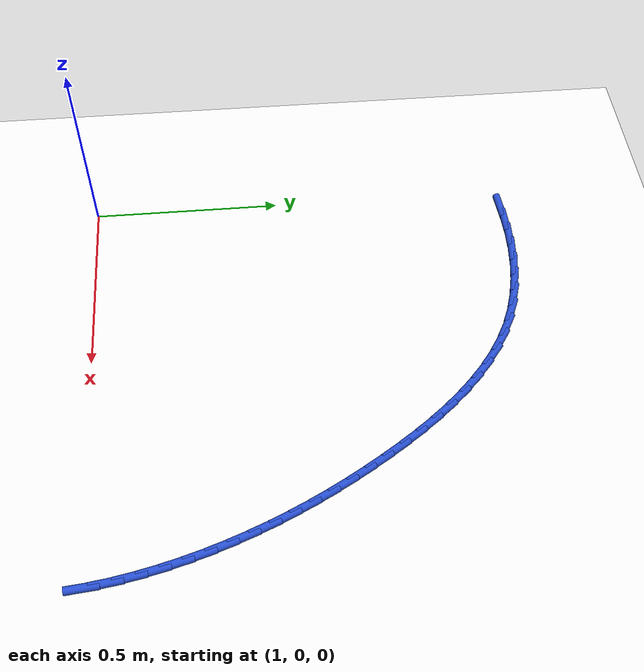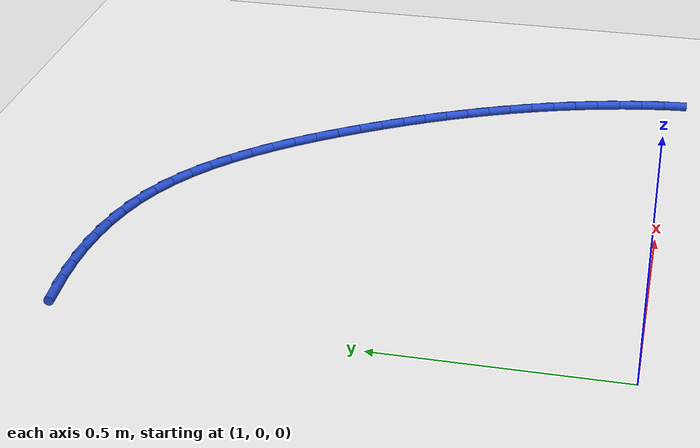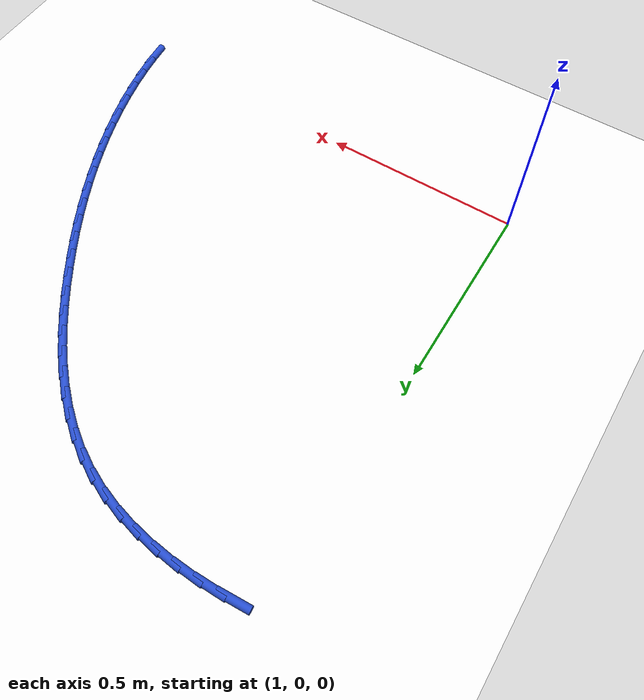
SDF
<sdf version="1.6">
 <world name="default">
  <model name="ground_plane">
   <static>1</static>
   <link name="link">
    <collision name="collision">
     <geometry><plane><normal>0 0 1</normal><size>100 100</size></plane></geometry>
     <surface><friction><ode><mu>100</mu><mu2>50</mu2></ode></friction></surface>
    </collision>
    <visual name="visual">
     <cast_shadows>0</cast_shadows>
     <geometry><plane><normal>0 0 1</normal><size>100 100</size></plane></geometry>
     <material>
      <script><uri>file://media/materials/scripts/gazebo.material</uri><name>Gazebo/WhiteGlow</name></script>
     </material>
    </visual>
   </link>
  </model>
  <model name="line">
   <link name="link_32">
    <pose>1.0641134051108616 1.1275212253752191 0.01 0 1.57 0.06756414150204455</pose>
    <collision name="collision">
     <geometry><cylinder><radius>0.01</radius><length>0.08</length></cylinder></geometry>
    </collision>
    <visual name="visual">
     <material>
      <script><name>Gazebo/Blue</name><uri>file://media/materials/scripts/gazebo.material</uri></script>
     </material>
     <geometry><cylinder><radius>0.01</radius><length>0.08</length></cylinder></geometry>
    </visual>
   </link>
   <link name="link_33">
    <pose>1.1177273198895366 1.1311491255303185 0.01 0 1.57 0.014612776297977982</pose>
    <collision name="collision">
     <geometry><cylinder><radius>0.01</radius><length>0.08</length></cylinder></geometry>
    </collision>
    <visual name="visual">
     <material>
      <script><name>Gazebo/Blue</name><uri>file://media/materials/scripts/gazebo.material</uri></script>
     </material>
     <geometry><cylinder><radius>0.01</radius><length>0.08</length></cylinder></geometry>
    </visual>
   </link>
   <link name="link_34">
    <pose>1.1714861850289906 1.1319347477202455 0.01 0 1.57 -0.04256462556225105</pose>
    <collision name="collision">
     <geometry><cylinder><radius>0.01</radius><length>0.08</length></cylinder></geometry>
    </collision>
    <visual name="visual">
     <material>
      <script><name>Gazebo/Blue</name><uri>file://media/materials/scripts/gazebo.material</uri></script>
     </material>
     <geometry><cylinder><radius>0.01</radius><length>0.08</length></cylinder></geometry>
    </visual>
   </link>
   <link name="link_35">
    <pose>1.225036634994911 1.129654015332078 0.01 0 1.57 -0.10475391369432006</pose>
    <collision name="collision">
     <geometry><cylinder><radius>0.01</radius><length>0.08</length></cylinder></geometry>
    </collision>
    <visual name="visual">
     <material>
      <script><name>Gazebo/Blue</name><uri>file://media/materials/scripts/gazebo.material</uri></script>
     </material>
     <geometry><cylinder><radius>0.01</radius><length>0.08</length></cylinder></geometry>
    </visual>
   </link>
   <link name="link_36">
    <pose>1.2780253042529854 1.1240828517528945 0.01 0 1.57 -0.172738894913433</pose>
    <collision name="collision">
     <geometry><cylinder><radius>0.01</radius><length>0.08</length></cylinder></geometry>
    </collision>
    <visual name="visual">
     <material>
      <script><name>Gazebo/Blue</name><uri>file://media/materials/scripts/gazebo.material</uri></script>
     </material>
     <geometry><cylinder><radius>0.01</radius><length>0.08</length></cylinder></geometry>
    </visual>
   </link>
   <link name="link_37">
    <pose>1.3300988272689034 1.1149971803697754 0.01 0 1.57 -0.24725602526114368</pose>
    <collision name="collision">
     <geometry><cylinder><radius>0.01</radius><length>0.08</length></cylinder></geometry>
    </collision>
    <visual name="visual">
     <material>
      <script><name>Gazebo/Blue</name><uri>file://media/materials/scripts/gazebo.material</uri></script>
     </material>
     <geometry><cylinder><radius>0.01</radius><length>0.08</length></cylinder></geometry>
    </visual>
   </link>
   <link name="link_38">
    <pose>1.3809038385083532 1.102172924569798 0.01 0 1.57 -0.3289163252637216</pose>
    <collision name="collision">
     <geometry><cylinder><radius>0.01</radius><length>0.08</length></cylinder></geometry>
    </collision>
    <visual name="visual">
     <material>
      <script><name>Gazebo/Blue</name><uri>file://media/materials/scripts/gazebo.material</uri></script>
     </material>
     <geometry><cylinder><radius>0.01</radius><length>0.08</length></cylinder></geometry>
    </visual>
   </link>
   <link name="link_39">
    <pose>1.430086972437022 1.0853860077400415 0.01 0 1.57 -0.41808113725754575</pose>
    <collision name="collision">
     <geometry><cylinder><radius>0.01</radius><length>0.08</length></cylinder></geometry>
    </collision>
    <visual name="visual">
     <material>
      <script><name>Gazebo/Blue</name><uri>file://media/materials/scripts/gazebo.material</uri></script>
     </material>
     <geometry><cylinder><radius>0.01</radius><length>0.08</length></cylinder></geometry>
    </visual>
   </link>
   <link name="link_40">
    <pose>1.477295109376677 1.0644127081498527 0.01 0 1.57 -0.5109110001938088</pose>
    <collision name="collision">
     <geometry><cylinder><radius>0.01</radius><length>0.08</length></cylinder></geometry>
    </collision>
    <visual name="visual">
     <material>
      <script><name>Gazebo/Blue</name><uri>file://media/materials/scripts/gazebo.material</uri></script>
     </material>
     <geometry><cylinder><radius>0.01</radius><length>0.08</length></cylinder></geometry>
    </visual>
   </link>
   <link name="link_41">
    <pose>1.522287737873153 1.0391918490104457 0.01 0 1.57 -0.5969764052242702</pose>
    <collision name="collision">
     <geometry><cylinder><radius>0.01</radius><length>0.08</length></cylinder></geometry>
    </collision>
    <visual name="visual">
     <material>
      <script><name>Gazebo/Blue</name><uri>file://media/materials/scripts/gazebo.material</uri></script>
     </material>
     <geometry><cylinder><radius>0.01</radius><length>0.08</length></cylinder></geometry>
    </visual>
   </link>
   <link name="link_42">
    <pose>1.5651150245356702 1.0100818343345799 0.01 0 1.57 -0.6742510770887034</pose>
    <collision name="collision">
     <geometry><cylinder><radius>0.01</radius><length>0.08</length></cylinder></geometry>
    </collision>
    <visual name="visual">
     <material>
      <script><name>Gazebo/Blue</name><uri>file://media/materials/scripts/gazebo.material</uri></script>
     </material>
     <geometry><cylinder><radius>0.01</radius><length>0.08</length></cylinder></geometry>
    </visual>
   </link>
   <link name="link_43">
    <pose>1.6058734077422299 0.9775078593665483 0.01 0 1.57 -0.7427729847942158</pose>
    <collision name="collision">
     <geometry><cylinder><radius>0.01</radius><length>0.08</length></cylinder></geometry>
    </collision>
    <visual name="visual">
     <material>
      <script><name>Gazebo/Blue</name><uri>file://media/materials/scripts/gazebo.material</uri></script>
     </material>
     <geometry><cylinder><radius>0.01</radius><length>0.08</length></cylinder></geometry>
    </visual>
   </link>
   <link name="link_44">
    <pose>1.6446593258708306 0.9418951193506451 0.01 0 1.57 -0.8029167988285689</pose>
    <collision name="collision">
     <geometry><cylinder><radius>0.01</radius><length>0.08</length></cylinder></geometry>
    </collision>
    <visual name="visual">
     <material>
      <script><name>Gazebo/Blue</name><uri>file://media/materials/scripts/gazebo.material</uri></script>
     </material>
     <geometry><cylinder><radius>0.01</radius><length>0.08</length></cylinder></geometry>
    </visual>
   </link>
   <link name="link_45">
    <pose>1.6815692172994743 0.903668809531164 0.01 0 1.57 -0.8552345324541976</pose>
    <collision name="collision">
     <geometry><cylinder><radius>0.01</radius><length>0.08</length></cylinder></geometry>
    </collision>
    <visual name="visual">
     <material>
      <script><name>Gazebo/Blue</name><uri>file://media/materials/scripts/gazebo.material</uri></script>
     </material>
     <geometry><cylinder><radius>0.01</radius><length>0.08</length></cylinder></geometry>
    </visual>
   </link>
   <link name="link_46">
    <pose>1.7166995204061604 0.8632541251523977 0.01 0 1.57 -0.9003367145080308</pose>
    <collision name="collision">
     <geometry><cylinder><radius>0.01</radius><length>0.08</length></cylinder></geometry>
    </collision>
    <visual name="visual">
     <material>
      <script><name>Gazebo/Blue</name><uri>file://media/materials/scripts/gazebo.material</uri></script>
     </material>
     <geometry><cylinder><radius>0.01</radius><length>0.08</length></cylinder></geometry>
    </visual>
   </link>
   <link name="link_47">
    <pose>1.7501466735688895 0.8210762614586404 0.01 0 1.57 -0.9388127423287806</pose>
    <collision name="collision">
     <geometry><cylinder><radius>0.01</radius><length>0.08</length></cylinder></geometry>
    </collision>
    <visual name="visual">
     <material>
      <script><name>Gazebo/Blue</name><uri>file://media/materials/scripts/gazebo.material</uri></script>
     </material>
     <geometry><cylinder><radius>0.01</radius><length>0.08</length></cylinder></geometry>
    </visual>
   </link>
   <link name="link_48">
    <pose>1.7820071151656616 0.7775604136941859 0.01 0 1.57 -0.9711812182361188</pose>
    <collision name="collision">
     <geometry><cylinder><radius>0.01</radius><length>0.08</length></cylinder></geometry>
    </collision>
    <visual name="visual">
     <material>
      <script><name>Gazebo/Blue</name><uri>file://media/materials/scripts/gazebo.material</uri></script>
     </material>
     <geometry><cylinder><radius>0.01</radius><length>0.08</length></cylinder></geometry>
    </visual>
   </link>
   <link name="link_49">
    <pose>1.8123772835744774 0.7331317771033277 0.01 0 1.57 -0.9978832108977325</pose>
    <collision name="collision">
     <geometry><cylinder><radius>0.01</radius><length>0.08</length></cylinder></geometry>
    </collision>
    <visual name="visual">
     <material>
      <script><name>Gazebo/Blue</name><uri>file://media/materials/scripts/gazebo.material</uri></script>
     </material>
     <geometry><cylinder><radius>0.01</radius><length>0.08</length></cylinder></geometry>
    </visual>
   </link>
   <link name="link_50">
    <pose>1.8413532805732675 0.6882137533503685 0.01 0 1.57 -1.021469109957374</pose>
    <collision name="collision">
     <geometry><cylinder><radius>0.01</radius><length>0.08</length></cylinder></geometry>
    </collision>
    <visual name="visual">
     <material>
      <script><name>Gazebo/Blue</name><uri>file://media/materials/scripts/gazebo.material</uri></script>
     </material>
     <geometry><cylinder><radius>0.01</radius><length>0.08</length></cylinder></geometry>
    </visual>
   </link>
   <link name="link_51">
    <pose>1.8689984486602034 0.6430551856431297 0.01 0 1.57 -1.046098591751851</pose>
    <collision name="collision">
     <geometry><cylinder><radius>0.01</radius><length>0.08</length></cylinder></geometry>
    </collision>
    <visual name="visual">
     <material>
      <script><name>Gazebo/Blue</name><uri>file://media/materials/scripts/gazebo.material</uri></script>
     </material>
     <geometry><cylinder><radius>0.01</radius><length>0.08</length></cylinder></geometry>
    </visual>
   </link>
   <link name="link_52">
    <pose>1.8953163976645166 0.5975866305064397 0.01 0 1.57 -1.072095802039923</pose>
    <collision name="collision">
     <geometry><cylinder><radius>0.01</radius><length>0.08</length></cylinder></geometry>
    </collision>
    <visual name="visual">
     <material>
      <script><name>Gazebo/Blue</name><uri>file://media/materials/scripts/gazebo.material</uri></script>
     </material>
     <geometry><cylinder><radius>0.01</radius><length>0.08</length></cylinder></geometry>
    </visual>
   </link>
   <link name="link_53">
    <pose>1.9203043880425776 0.5517048117088825 0.01 0 1.57 -1.099315387383707</pose>
    <collision name="collision">
     <geometry><cylinder><radius>0.01</radius><length>0.08</length></cylinder></geometry>
    </collision>
    <visual name="visual">
     <material>
      <script><name>Gazebo/Blue</name><uri>file://media/materials/scripts/gazebo.material</uri></script>
     </material>
     <geometry><cylinder><radius>0.01</radius><length>0.08</length></cylinder></geometry>
    </visual>
   </link>
   <link name="link_54">
    <pose>1.9439596802507535 0.5053064530190428 0.01 0 1.57 -1.1275871176960621</pose>
    <collision name="collision">
     <geometry><cylinder><radius>0.01</radius><length>0.08</length></cylinder></geometry>
    </collision>
    <visual name="visual">
     <material>
      <script><name>Gazebo/Blue</name><uri>file://media/materials/scripts/gazebo.material</uri></script>
     </material>
     <geometry><cylinder><radius>0.01</radius><length>0.08</length></cylinder></geometry>
    </visual>
   </link>
   <link name="link_55">
    <pose>1.9662795347454152 0.45828827820550555 0.01 0 1.57 -1.156719133410586</pose>
    <collision name="collision">
     <geometry><cylinder><radius>0.01</radius><length>0.08</length></cylinder></geometry>
    </collision>
    <visual name="visual">
     <material>
      <script><name>Gazebo/Blue</name><uri>file://media/materials/scripts/gazebo.material</uri></script>
     </material>
     <geometry><cylinder><radius>0.01</radius><length>0.08</length></cylinder></geometry>
    </visual>
   </link>
   <link name="link_56">
    <pose>1.9872612119829294 0.41054701103685576 0.01 0 1.57 -1.186540295975961</pose>
    <collision name="collision">
     <geometry><cylinder><radius>0.01</radius><length>0.08</length></cylinder></geometry>
    </collision>
    <visual name="visual">
     <material>
      <script><name>Gazebo/Blue</name><uri>file://media/materials/scripts/gazebo.material</uri></script>
     </material>
     <geometry><cylinder><radius>0.01</radius><length>0.08</length></cylinder></geometry>
    </visual>
   </link>
   <link name="link_57">
    <pose>2.0068957101657494 0.361989574556233 0.01 0 1.57 -1.2173244150574563</pose>
    <collision name="collision">
     <geometry><cylinder><radius>0.01</radius><length>0.08</length></cylinder></geometry>
    </collision>
    <visual name="visual">
     <material>
      <script><name>Gazebo/Blue</name><uri>file://media/materials/scripts/gazebo.material</uri></script>
     </material>
     <geometry><cylinder><radius>0.01</radius><length>0.08</length></cylinder></geometry>
    </visual>
   </link>
   <link name="link_58">
    <pose>2.0251071394141023 0.3126318318025395 0.01 0 1.57 -1.2494071686319863</pose>
    <collision name="collision">
     <geometry><cylinder><radius>0.01</radius><length>0.08</length></cylinder></geometry>
    </collision>
    <visual name="visual">
     <material>
      <script><name>Gazebo/Blue</name><uri>file://media/materials/scripts/gazebo.material</uri></script>
     </material>
     <geometry><cylinder><radius>0.01</radius><length>0.08</length></cylinder></geometry>
    </visual>
   </link>
   <link name="link_59">
    <pose>2.0417791065331525 0.26255561318621456 0.01 0 1.57 -1.2829260567455927</pose>
    <collision name="collision">
     <geometry><cylinder><radius>0.01</radius><length>0.08</length></cylinder></geometry>
    </collision>
    <visual name="visual">
     <material>
      <script><name>Gazebo/Blue</name><uri>file://media/materials/scripts/gazebo.material</uri></script>
     </material>
     <geometry><cylinder><radius>0.01</radius><length>0.08</length></cylinder></geometry>
    </visual>
   </link>
   <link name="link_60">
    <pose>2.0567946529428993 0.21184366995523957 0.01 0 1.57 -1.3180132523838588</pose>
    <collision name="collision">
     <geometry><cylinder><radius>0.01</radius><length>0.08</length></cylinder></geometry>
    </collision>
    <visual name="visual">
     <material>
      <script><name>Gazebo/Blue</name><uri>file://media/materials/scripts/gazebo.material</uri></script>
     </material>
     <geometry><cylinder><radius>0.01</radius><length>0.08</length></cylinder></geometry>
    </visual>
   </link>
   <link name="link_61">
    <pose>2.070036820063343 0.16057875335759556 0.01 0 1.57 -1.354797374618931</pose>
    <collision name="collision">
     <geometry><cylinder><radius>0.01</radius><length>0.08</length></cylinder></geometry>
    </collision>
    <visual name="visual">
     <material>
      <script><name>Gazebo/Blue</name><uri>file://media/materials/scripts/gazebo.material</uri></script>
     </material>
     <geometry><cylinder><radius>0.01</radius><length>0.08</length></cylinder></geometry>
    </visual>
   </link>
   <link name="link_62">
    <pose>2.0813886493144844 0.10884361464126348 0.01 0 1.57 -1.393401040808195</pose>
    <collision name="collision">
     <geometry><cylinder><radius>0.01</radius><length>0.08</length></cylinder></geometry>
    </collision>
    <visual name="visual">
     <material>
      <script><name>Gazebo/Blue</name><uri>file://media/materials/scripts/gazebo.material</uri></script>
     </material>
     <geometry><cylinder><radius>0.01</radius><length>0.08</length></cylinder></geometry>
    </visual>
   </link>
   <link name="link_63">
    <pose>2.090733182116323 0.056721005054224866 0.01 0 1.57 -1.4339375150956983</pose>
    <collision name="collision">
     <geometry><cylinder><radius>0.01</radius><length>0.08</length></cylinder></geometry>
    </collision>
    <visual name="visual">
     <material>
      <script><name>Gazebo/Blue</name><uri>file://media/materials/scripts/gazebo.material</uri></script>
     </material>
     <geometry><cylinder><radius>0.01</radius><length>0.08</length></cylinder></geometry>
    </visual>
   </link>
   <link name="link_64">
    <pose>2.0979534598888594 0.004293675844461463 0.01 0 1.57 -1.476506373782844</pose>
    <collision name="collision">
     <geometry><cylinder><radius>0.01</radius><length>0.08</length></cylinder></geometry>
    </collision>
    <visual name="visual">
     <material>
      <script><name>Gazebo/Blue</name><uri>file://media/materials/scripts/gazebo.material</uri></script>
     </material>
     <geometry><cylinder><radius>0.01</radius><length>0.08</length></cylinder></geometry>
    </visual>
   </link>
  </model>
 </world>
</sdf>
